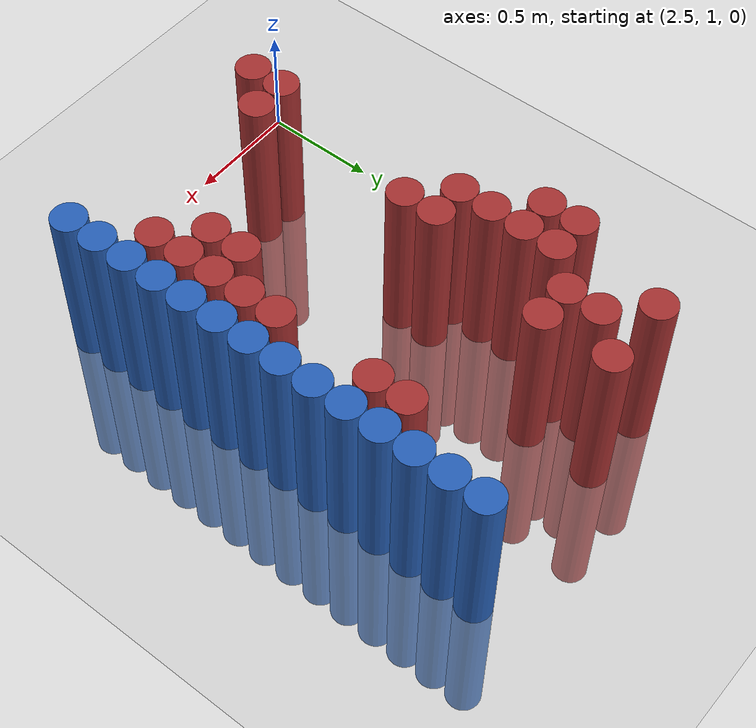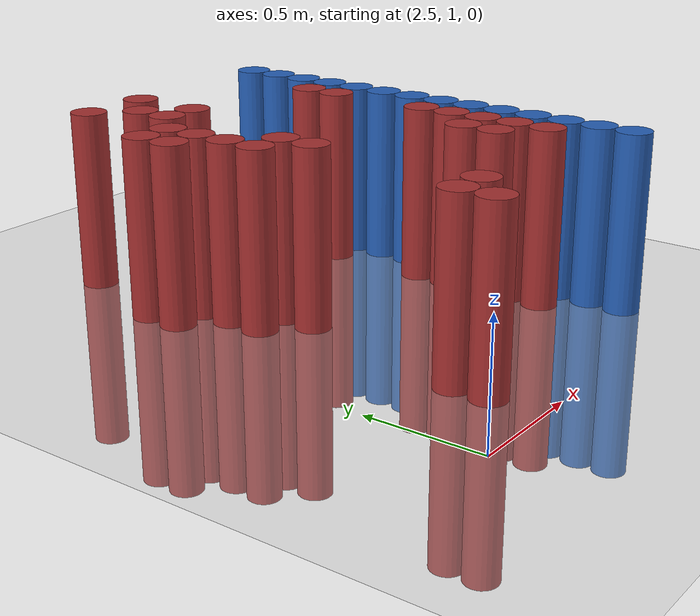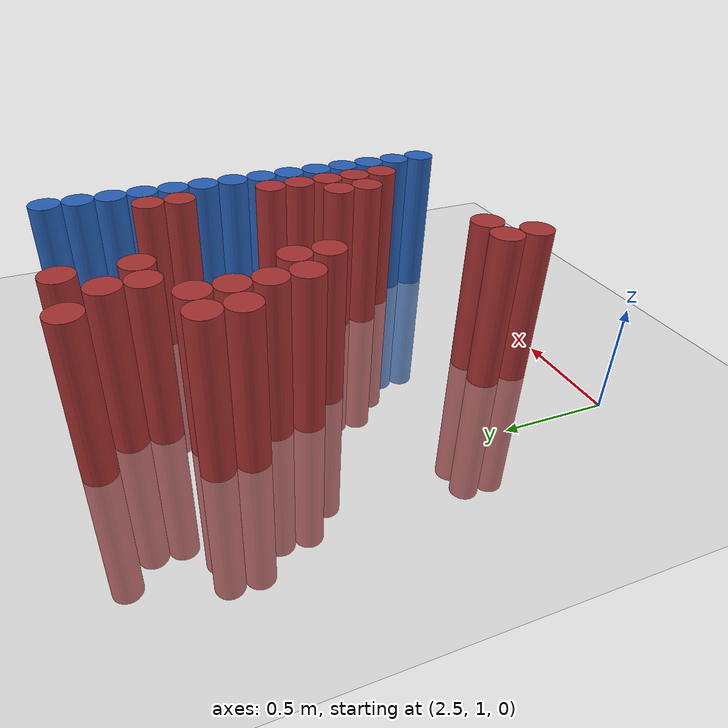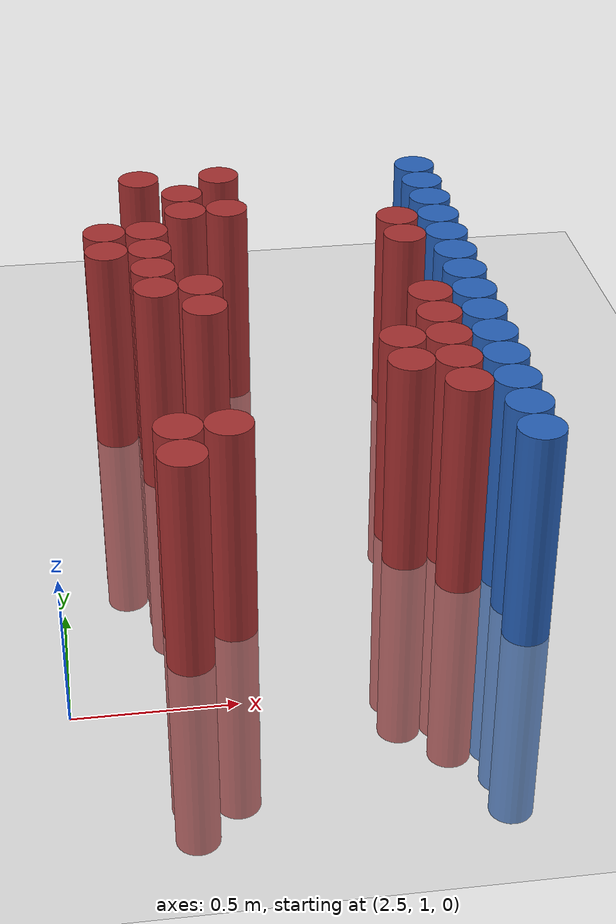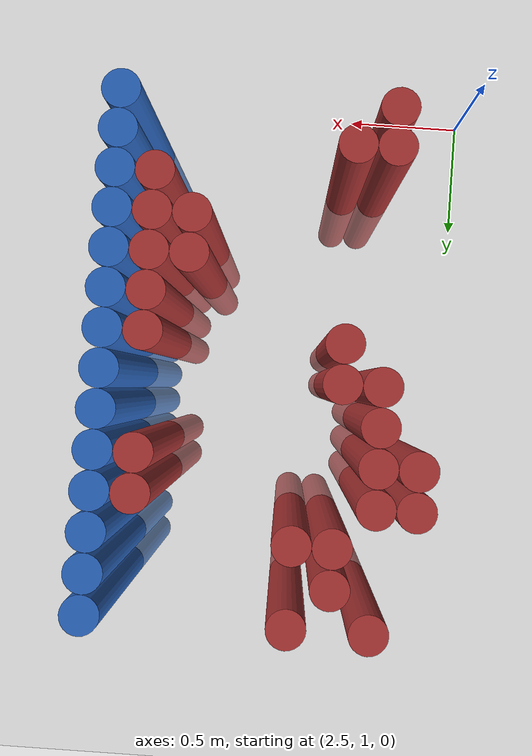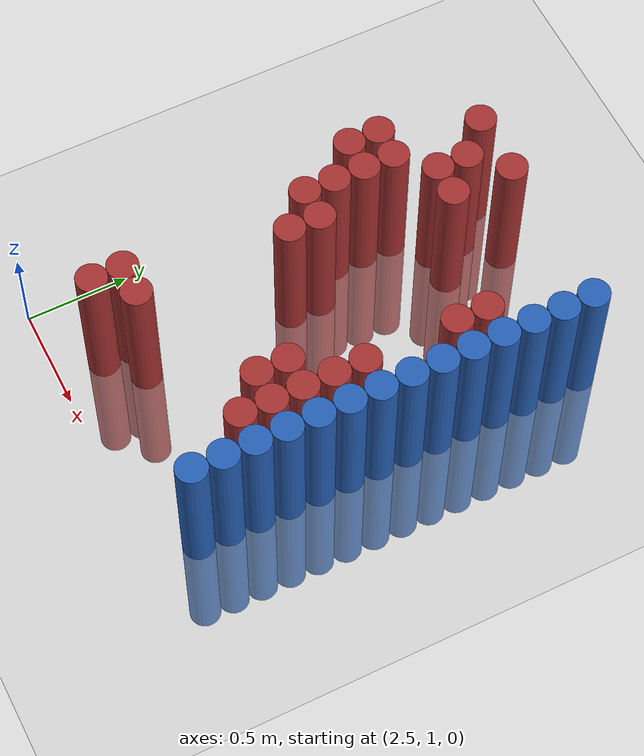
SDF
<sdf version="1.6">
 <world name="default">
  <model name="ground_plane">
   <static>1</static>
   <link name="link">
    <collision name="collision">
     <geometry><plane><normal>0 0 1</normal><size>100 100</size></plane></geometry>
     <surface><friction><ode><mu>100</mu><mu2>50</mu2></ode></friction></surface>
    </collision>
    <visual name="visual">
     <cast_shadows>0</cast_shadows>
     <geometry><plane><normal>0 0 1</normal><size>100 100</size></plane></geometry>
     <material>
      <script><uri>file://media/materials/scripts/gazebo.material</uri><name>Gazebo/Grey</name></script>
     </material>
    </visual>
   </link>
  </model>
  <model name="unit_cylinder_130">
   <static>1</static>
   <pose>3.925000 1.225000 0.000000 0.000000 0.000000 0.000000</pose>
   <link name="link">
    <inertial>
     <mass>1</mass>
     <inertia><ixx>0.145833</ixx><ixy>0</ixy><ixz>0</ixz><iyy>0.145833</iyy><iyz>0</iyz><izz>0.125</izz></inertia>
    </inertial>
    <collision name="collision">
     <geometry><cylinder><radius>0.075000</radius><length>1.5</length></cylinder></geometry>
    </collision>
    <visual name="visual">
     <geometry><cylinder><radius>0.075000</radius><length>1.5</length></cylinder></geometry>
     <material>
      <ambient>0.152000 0.379000 0.720000 1</ambient>
      <diffuse>0.152000 0.379000 0.720000 1</diffuse>
     </material>
     <material>
      <script><name>Gazebo/Grey</name><uri>file://media/materials/scripts/gazebo.material</uri></script>
     </material>
    </visual>
   </link>
  </model>
  <model name="unit_cylinder_132">
   <static>1</static>
   <pose>3.925000 1.375000 0.000000 0.000000 0.000000 0.000000</pose>
   <link name="link">
    <inertial>
     <mass>1</mass>
     <inertia><ixx>0.145833</ixx><ixy>0</ixy><ixz>0</ixz><iyy>0.145833</iyy><iyz>0</iyz><izz>0.125</izz></inertia>
    </inertial>
    <collision name="collision">
     <geometry><cylinder><radius>0.075000</radius><length>1.5</length></cylinder></geometry>
    </collision>
    <visual name="visual">
     <geometry><cylinder><radius>0.075000</radius><length>1.5</length></cylinder></geometry>
     <material>
      <ambient>0.152000 0.379000 0.720000 1</ambient>
      <diffuse>0.152000 0.379000 0.720000 1</diffuse>
     </material>
     <material>
      <script><name>Gazebo/Grey</name><uri>file://media/materials/scripts/gazebo.material</uri></script>
     </material>
    </visual>
   </link>
  </model>
  <model name="unit_cylinder_134">
   <static>1</static>
   <pose>3.925000 1.525000 0.000000 0.000000 0.000000 0.000000</pose>
   <link name="link">
    <inertial>
     <mass>1</mass>
     <inertia><ixx>0.145833</ixx><ixy>0</ixy><ixz>0</ixz><iyy>0.145833</iyy><iyz>0</iyz><izz>0.125</izz></inertia>
    </inertial>
    <collision name="collision">
     <geometry><cylinder><radius>0.075000</radius><length>1.5</length></cylinder></geometry>
    </collision>
    <visual name="visual">
     <geometry><cylinder><radius>0.075000</radius><length>1.5</length></cylinder></geometry>
     <material>
      <ambient>0.152000 0.379000 0.720000 1</ambient>
      <diffuse>0.152000 0.379000 0.720000 1</diffuse>
     </material>
     <material>
      <script><name>Gazebo/Grey</name><uri>file://media/materials/scripts/gazebo.material</uri></script>
     </material>
    </visual>
   </link>
  </model>
  <model name="unit_cylinder_136">
   <static>1</static>
   <pose>3.925000 1.675000 0.000000 0.000000 0.000000 0.000000</pose>
   <link name="link">
    <inertial>
     <mass>1</mass>
     <inertia><ixx>0.145833</ixx><ixy>0</ixy><ixz>0</ixz><iyy>0.145833</iyy><iyz>0</iyz><izz>0.125</izz></inertia>
    </inertial>
    <collision name="collision">
     <geometry><cylinder><radius>0.075000</radius><length>1.5</length></cylinder></geometry>
    </collision>
    <visual name="visual">
     <geometry><cylinder><radius>0.075000</radius><length>1.5</length></cylinder></geometry>
     <material>
      <ambient>0.152000 0.379000 0.720000 1</ambient>
      <diffuse>0.152000 0.379000 0.720000 1</diffuse>
     </material>
     <material>
      <script><name>Gazebo/Grey</name><uri>file://media/materials/scripts/gazebo.material</uri></script>
     </material>
    </visual>
   </link>
  </model>
  <model name="unit_cylinder_138">
   <static>1</static>
   <pose>3.925000 1.825000 0.000000 0.000000 0.000000 0.000000</pose>
   <link name="link">
    <inertial>
     <mass>1</mass>
     <inertia><ixx>0.145833</ixx><ixy>0</ixy><ixz>0</ixz><iyy>0.145833</iyy><iyz>0</iyz><izz>0.125</izz></inertia>
    </inertial>
    <collision name="collision">
     <geometry><cylinder><radius>0.075000</radius><length>1.5</length></cylinder></geometry>
    </collision>
    <visual name="visual">
     <geometry><cylinder><radius>0.075000</radius><length>1.5</length></cylinder></geometry>
     <material>
      <ambient>0.152000 0.379000 0.720000 1</ambient>
      <diffuse>0.152000 0.379000 0.720000 1</diffuse>
     </material>
     <material>
      <script><name>Gazebo/Grey</name><uri>file://media/materials/scripts/gazebo.material</uri></script>
     </material>
    </visual>
   </link>
  </model>
  <model name="unit_cylinder_140">
   <static>1</static>
   <pose>3.925000 1.975000 0.000000 0.000000 0.000000 0.000000</pose>
   <link name="link">
    <inertial>
     <mass>1</mass>
     <inertia><ixx>0.145833</ixx><ixy>0</ixy><ixz>0</ixz><iyy>0.145833</iyy><iyz>0</iyz><izz>0.125</izz></inertia>
    </inertial>
    <collision name="collision">
     <geometry><cylinder><radius>0.075000</radius><length>1.5</length></cylinder></geometry>
    </collision>
    <visual name="visual">
     <geometry><cylinder><radius>0.075000</radius><length>1.5</length></cylinder></geometry>
     <material>
      <ambient>0.152000 0.379000 0.720000 1</ambient>
      <diffuse>0.152000 0.379000 0.720000 1</diffuse>
     </material>
     <material>
      <script><name>Gazebo/Grey</name><uri>file://media/materials/scripts/gazebo.material</uri></script>
     </material>
    </visual>
   </link>
  </model>
  <model name="unit_cylinder_142">
   <static>1</static>
   <pose>3.925000 2.125000 0.000000 0.000000 0.000000 0.000000</pose>
   <link name="link">
    <inertial>
     <mass>1</mass>
     <inertia><ixx>0.145833</ixx><ixy>0</ixy><ixz>0</ixz><iyy>0.145833</iyy><iyz>0</iyz><izz>0.125</izz></inertia>
    </inertial>
    <collision name="collision">
     <geometry><cylinder><radius>0.075000</radius><length>1.5</length></cylinder></geometry>
    </collision>
    <visual name="visual">
     <geometry><cylinder><radius>0.075000</radius><length>1.5</length></cylinder></geometry>
     <material>
      <ambient>0.152000 0.379000 0.720000 1</ambient>
      <diffuse>0.152000 0.379000 0.720000 1</diffuse>
     </material>
     <material>
      <script><name>Gazebo/Grey</name><uri>file://media/materials/scripts/gazebo.material</uri></script>
     </material>
    </visual>
   </link>
  </model>
  <model name="unit_cylinder_144">
   <static>1</static>
   <pose>3.925000 2.275000 0.000000 0.000000 0.000000 0.000000</pose>
   <link name="link">
    <inertial>
     <mass>1</mass>
     <inertia><ixx>0.145833</ixx><ixy>0</ixy><ixz>0</ixz><iyy>0.145833</iyy><iyz>0</iyz><izz>0.125</izz></inertia>
    </inertial>
    <collision name="collision">
     <geometry><cylinder><radius>0.075000</radius><length>1.5</length></cylinder></geometry>
    </collision>
    <visual name="visual">
     <geometry><cylinder><radius>0.075000</radius><length>1.5</length></cylinder></geometry>
     <material>
      <ambient>0.152000 0.379000 0.720000 1</ambient>
      <diffuse>0.152000 0.379000 0.720000 1</diffuse>
     </material>
     <material>
      <script><name>Gazebo/Grey</name><uri>file://media/materials/scripts/gazebo.material</uri></script>
     </material>
    </visual>
   </link>
  </model>
  <model name="unit_cylinder_146">
   <static>1</static>
   <pose>3.925000 2.425000 0.000000 0.000000 0.000000 0.000000</pose>
   <link name="link">
    <inertial>
     <mass>1</mass>
     <inertia><ixx>0.145833</ixx><ixy>0</ixy><ixz>0</ixz><iyy>0.145833</iyy><iyz>0</iyz><izz>0.125</izz></inertia>
    </inertial>
    <collision name="collision">
     <geometry><cylinder><radius>0.075000</radius><length>1.5</length></cylinder></geometry>
    </collision>
    <visual name="visual">
     <geometry><cylinder><radius>0.075000</radius><length>1.5</length></cylinder></geometry>
     <material>
      <ambient>0.152000 0.379000 0.720000 1</ambient>
      <diffuse>0.152000 0.379000 0.720000 1</diffuse>
     </material>
     <material>
      <script><name>Gazebo/Grey</name><uri>file://media/materials/scripts/gazebo.material</uri></script>
     </material>
    </visual>
   </link>
  </model>
  <model name="unit_cylinder_148">
   <static>1</static>
   <pose>3.925000 2.575000 0.000000 0.000000 0.000000 0.000000</pose>
   <link name="link">
    <inertial>
     <mass>1</mass>
     <inertia><ixx>0.145833</ixx><ixy>0</ixy><ixz>0</ixz><iyy>0.145833</iyy><iyz>0</iyz><izz>0.125</izz></inertia>
    </inertial>
    <collision name="collision">
     <geometry><cylinder><radius>0.075000</radius><length>1.5</length></cylinder></geometry>
    </collision>
    <visual name="visual">
     <geometry><cylinder><radius>0.075000</radius><length>1.5</length></cylinder></geometry>
     <material>
      <ambient>0.152000 0.379000 0.720000 1</ambient>
      <diffuse>0.152000 0.379000 0.720000 1</diffuse>
     </material>
     <material>
      <script><name>Gazebo/Grey</name><uri>file://media/materials/scripts/gazebo.material</uri></script>
     </material>
    </visual>
   </link>
  </model>
  <model name="unit_cylinder_150">
   <static>1</static>
   <pose>3.925000 2.725000 0.000000 0.000000 0.000000 0.000000</pose>
   <link name="link">
    <inertial>
     <mass>1</mass>
     <inertia><ixx>0.145833</ixx><ixy>0</ixy><ixz>0</ixz><iyy>0.145833</iyy><iyz>0</iyz><izz>0.125</izz></inertia>
    </inertial>
    <collision name="collision">
     <geometry><cylinder><radius>0.075000</radius><length>1.5</length></cylinder></geometry>
    </collision>
    <visual name="visual">
     <geometry><cylinder><radius>0.075000</radius><length>1.5</length></cylinder></geometry>
     <material>
      <ambient>0.152000 0.379000 0.720000 1</ambient>
      <diffuse>0.152000 0.379000 0.720000 1</diffuse>
     </material>
     <material>
      <script><name>Gazebo/Grey</name><uri>file://media/materials/scripts/gazebo.material</uri></script>
     </material>
    </visual>
   </link>
  </model>
  <model name="unit_cylinder_152">
   <static>1</static>
   <pose>3.925000 2.875000 0.000000 0.000000 0.000000 0.000000</pose>
   <link name="link">
    <inertial>
     <mass>1</mass>
     <inertia><ixx>0.145833</ixx><ixy>0</ixy><ixz>0</ixz><iyy>0.145833</iyy><iyz>0</iyz><izz>0.125</izz></inertia>
    </inertial>
    <collision name="collision">
     <geometry><cylinder><radius>0.075000</radius><length>1.5</length></cylinder></geometry>
    </collision>
    <visual name="visual">
     <geometry><cylinder><radius>0.075000</radius><length>1.5</length></cylinder></geometry>
     <material>
      <ambient>0.152000 0.379000 0.720000 1</ambient>
      <diffuse>0.152000 0.379000 0.720000 1</diffuse>
     </material>
     <material>
      <script><name>Gazebo/Grey</name><uri>file://media/materials/scripts/gazebo.material</uri></script>
     </material>
    </visual>
   </link>
  </model>
  <model name="unit_cylinder_154">
   <static>1</static>
   <pose>3.925000 3.025000 0.000000 0.000000 0.000000 0.000000</pose>
   <link name="link">
    <inertial>
     <mass>1</mass>
     <inertia><ixx>0.145833</ixx><ixy>0</ixy><ixz>0</ixz><iyy>0.145833</iyy><iyz>0</iyz><izz>0.125</izz></inertia>
    </inertial>
    <collision name="collision">
     <geometry><cylinder><radius>0.075000</radius><length>1.5</length></cylinder></geometry>
    </collision>
    <visual name="visual">
     <geometry><cylinder><radius>0.075000</radius><length>1.5</length></cylinder></geometry>
     <material>
      <ambient>0.152000 0.379000 0.720000 1</ambient>
      <diffuse>0.152000 0.379000 0.720000 1</diffuse>
     </material>
     <material>
      <script><name>Gazebo/Grey</name><uri>file://media/materials/scripts/gazebo.material</uri></script>
     </material>
    </visual>
   </link>
  </model>
  <model name="unit_cylinder_156">
   <static>1</static>
   <pose>3.925000 3.175000 0.000000 0.000000 0.000000 0.000000</pose>
   <link name="link">
    <inertial>
     <mass>1</mass>
     <inertia><ixx>0.145833</ixx><ixy>0</ixy><ixz>0</ixz><iyy>0.145833</iyy><iyz>0</iyz><izz>0.125</izz></inertia>
    </inertial>
    <collision name="collision">
     <geometry><cylinder><radius>0.075000</radius><length>1.5</length></cylinder></geometry>
    </collision>
    <visual name="visual">
     <geometry><cylinder><radius>0.075000</radius><length>1.5</length></cylinder></geometry>
     <material>
      <ambient>0.152000 0.379000 0.720000 1</ambient>
      <diffuse>0.152000 0.379000 0.720000 1</diffuse>
     </material>
     <material>
      <script><name>Gazebo/Grey</name><uri>file://media/materials/scripts/gazebo.material</uri></script>
     </material>
    </visual>
   </link>
  </model>
  <model name="unit_cylinder_559">
   <static>1</static>
   <pose>2.725000 2.575000 0.000000 0.000000 0.000000 0.000000</pose>
   <link name="link">
    <inertial>
     <mass>1</mass>
     <inertia><ixx>0.145833</ixx><ixy>0</ixy><ixz>0</ixz><iyy>0.145833</iyy><iyz>0</iyz><izz>0.125</izz></inertia>
    </inertial>
    <collision name="collision">
     <geometry><cylinder><radius>0.075000</radius><length>1.5</length></cylinder></geometry>
    </collision>
    <visual name="visual">
     <geometry><cylinder><radius>0.075000</radius><length>1.5</length></cylinder></geometry>
     <material>
      <ambient>0.648000 0.192000 0.192000 1</ambient>
      <diffuse>0.648000 0.192000 0.192000 1</diffuse>
     </material>
     <material>
      <script><name>Gazebo/Grey</name><uri>file://media/materials/scripts/gazebo.material</uri></script>
     </material>
    </visual>
   </link>
  </model>
  <model name="unit_cylinder_560">
   <static>1</static>
   <pose>2.725000 2.725000 0.000000 0.000000 0.000000 0.000000</pose>
   <link name="link">
    <inertial>
     <mass>1</mass>
     <inertia><ixx>0.145833</ixx><ixy>0</ixy><ixz>0</ixz><iyy>0.145833</iyy><iyz>0</iyz><izz>0.125</izz></inertia>
    </inertial>
    <collision name="collision">
     <geometry><cylinder><radius>0.075000</radius><length>1.5</length></cylinder></geometry>
    </collision>
    <visual name="visual">
     <geometry><cylinder><radius>0.075000</radius><length>1.5</length></cylinder></geometry>
     <material>
      <ambient>0.648000 0.192000 0.192000 1</ambient>
      <diffuse>0.648000 0.192000 0.192000 1</diffuse>
     </material>
     <material>
      <script><name>Gazebo/Grey</name><uri>file://media/materials/scripts/gazebo.material</uri></script>
     </material>
    </visual>
   </link>
  </model>
  <model name="unit_cylinder_568">
   <static>1</static>
   <pose>2.875000 1.225000 0.000000 0.000000 0.000000 0.000000</pose>
   <link name="link">
    <inertial>
     <mass>1</mass>
     <inertia><ixx>0.145833</ixx><ixy>0</ixy><ixz>0</ixz><iyy>0.145833</iyy><iyz>0</iyz><izz>0.125</izz></inertia>
    </inertial>
    <collision name="collision">
     <geometry><cylinder><radius>0.075000</radius><length>1.5</length></cylinder></geometry>
    </collision>
    <visual name="visual">
     <geometry><cylinder><radius>0.075000</radius><length>1.5</length></cylinder></geometry>
     <material>
      <ambient>0.648000 0.192000 0.192000 1</ambient>
      <diffuse>0.648000 0.192000 0.192000 1</diffuse>
     </material>
     <material>
      <script><name>Gazebo/Grey</name><uri>file://media/materials/scripts/gazebo.material</uri></script>
     </material>
    </visual>
   </link>
  </model>
  <model name="unit_cylinder_569">
   <static>1</static>
   <pose>2.875000 1.375000 0.000000 0.000000 0.000000 0.000000</pose>
   <link name="link">
    <inertial>
     <mass>1</mass>
     <inertia><ixx>0.145833</ixx><ixy>0</ixy><ixz>0</ixz><iyy>0.145833</iyy><iyz>0</iyz><izz>0.125</izz></inertia>
    </inertial>
    <collision name="collision">
     <geometry><cylinder><radius>0.075000</radius><length>1.5</length></cylinder></geometry>
    </collision>
    <visual name="visual">
     <geometry><cylinder><radius>0.075000</radius><length>1.5</length></cylinder></geometry>
     <material>
      <ambient>0.648000 0.192000 0.192000 1</ambient>
      <diffuse>0.648000 0.192000 0.192000 1</diffuse>
     </material>
     <material>
      <script><name>Gazebo/Grey</name><uri>file://media/materials/scripts/gazebo.material</uri></script>
     </material>
    </visual>
   </link>
  </model>
  <model name="unit_cylinder_570">
   <static>1</static>
   <pose>2.875000 2.275000 0.000000 0.000000 0.000000 0.000000</pose>
   <link name="link">
    <inertial>
     <mass>1</mass>
     <inertia><ixx>0.145833</ixx><ixy>0</ixy><ixz>0</ixz><iyy>0.145833</iyy><iyz>0</iyz><izz>0.125</izz></inertia>
    </inertial>
    <collision name="collision">
     <geometry><cylinder><radius>0.075000</radius><length>1.5</length></cylinder></geometry>
    </collision>
    <visual name="visual">
     <geometry><cylinder><radius>0.075000</radius><length>1.5</length></cylinder></geometry>
     <material>
      <ambient>0.648000 0.192000 0.192000 1</ambient>
      <diffuse>0.648000 0.192000 0.192000 1</diffuse>
     </material>
     <material>
      <script><name>Gazebo/Grey</name><uri>file://media/materials/scripts/gazebo.material</uri></script>
     </material>
    </visual>
   </link>
  </model>
  <model name="unit_cylinder_571">
   <static>1</static>
   <pose>2.875000 2.425000 0.000000 0.000000 0.000000 0.000000</pose>
   <link name="link">
    <inertial>
     <mass>1</mass>
     <inertia><ixx>0.145833</ixx><ixy>0</ixy><ixz>0</ixz><iyy>0.145833</iyy><iyz>0</iyz><izz>0.125</izz></inertia>
    </inertial>
    <collision name="collision">
     <geometry><cylinder><radius>0.075000</radius><length>1.5</length></cylinder></geometry>
    </collision>
    <visual name="visual">
     <geometry><cylinder><radius>0.075000</radius><length>1.5</length></cylinder></geometry>
     <material>
      <ambient>0.648000 0.192000 0.192000 1</ambient>
      <diffuse>0.648000 0.192000 0.192000 1</diffuse>
     </material>
     <material>
      <script><name>Gazebo/Grey</name><uri>file://media/materials/scripts/gazebo.material</uri></script>
     </material>
    </visual>
   </link>
  </model>
  <model name="unit_cylinder_572">
   <static>1</static>
   <pose>2.875000 2.575000 0.000000 0.000000 0.000000 0.000000</pose>
   <link name="link">
    <inertial>
     <mass>1</mass>
     <inertia><ixx>0.145833</ixx><ixy>0</ixy><ixz>0</ixz><iyy>0.145833</iyy><iyz>0</iyz><izz>0.125</izz></inertia>
    </inertial>
    <collision name="collision">
     <geometry><cylinder><radius>0.075000</radius><length>1.5</length></cylinder></geometry>
    </collision>
    <visual name="visual">
     <geometry><cylinder><radius>0.075000</radius><length>1.5</length></cylinder></geometry>
     <material>
      <ambient>0.648000 0.192000 0.192000 1</ambient>
      <diffuse>0.648000 0.192000 0.192000 1</diffuse>
     </material>
     <material>
      <script><name>Gazebo/Grey</name><uri>file://media/materials/scripts/gazebo.material</uri></script>
     </material>
    </visual>
   </link>
  </model>
  <model name="unit_cylinder_573">
   <static>1</static>
   <pose>2.875000 2.725000 0.000000 0.000000 0.000000 0.000000</pose>
   <link name="link">
    <inertial>
     <mass>1</mass>
     <inertia><ixx>0.145833</ixx><ixy>0</ixy><ixz>0</ixz><iyy>0.145833</iyy><iyz>0</iyz><izz>0.125</izz></inertia>
    </inertial>
    <collision name="collision">
     <geometry><cylinder><radius>0.075000</radius><length>1.5</length></cylinder></geometry>
    </collision>
    <visual name="visual">
     <geometry><cylinder><radius>0.075000</radius><length>1.5</length></cylinder></geometry>
     <material>
      <ambient>0.648000 0.192000 0.192000 1</ambient>
      <diffuse>0.648000 0.192000 0.192000 1</diffuse>
     </material>
     <material>
      <script><name>Gazebo/Grey</name><uri>file://media/materials/scripts/gazebo.material</uri></script>
     </material>
    </visual>
   </link>
  </model>
  <model name="unit_cylinder_574">
   <static>1</static>
   <pose>2.875000 3.175000 0.000000 0.000000 0.000000 0.000000</pose>
   <link name="link">
    <inertial>
     <mass>1</mass>
     <inertia><ixx>0.145833</ixx><ixy>0</ixy><ixz>0</ixz><iyy>0.145833</iyy><iyz>0</iyz><izz>0.125</izz></inertia>
    </inertial>
    <collision name="collision">
     <geometry><cylinder><radius>0.075000</radius><length>1.5</length></cylinder></geometry>
    </collision>
    <visual name="visual">
     <geometry><cylinder><radius>0.075000</radius><length>1.5</length></cylinder></geometry>
     <material>
      <ambient>0.648000 0.192000 0.192000 1</ambient>
      <diffuse>0.648000 0.192000 0.192000 1</diffuse>
     </material>
     <material>
      <script><name>Gazebo/Grey</name><uri>file://media/materials/scripts/gazebo.material</uri></script>
     </material>
    </visual>
   </link>
  </model>
  <model name="unit_cylinder_579">
   <static>1</static>
   <pose>3.025000 1.375000 0.000000 0.000000 0.000000 0.000000</pose>
   <link name="link">
    <inertial>
     <mass>1</mass>
     <inertia><ixx>0.145833</ixx><ixy>0</ixy><ixz>0</ixz><iyy>0.145833</iyy><iyz>0</iyz><izz>0.125</izz></inertia>
    </inertial>
    <collision name="collision">
     <geometry><cylinder><radius>0.075000</radius><length>1.5</length></cylinder></geometry>
    </collision>
    <visual name="visual">
     <geometry><cylinder><radius>0.075000</radius><length>1.5</length></cylinder></geometry>
     <material>
      <ambient>0.648000 0.192000 0.192000 1</ambient>
      <diffuse>0.648000 0.192000 0.192000 1</diffuse>
     </material>
     <material>
      <script><name>Gazebo/Grey</name><uri>file://media/materials/scripts/gazebo.material</uri></script>
     </material>
    </visual>
   </link>
  </model>
  <model name="unit_cylinder_580">
   <static>1</static>
   <pose>3.025000 2.125000 0.000000 0.000000 0.000000 0.000000</pose>
   <link name="link">
    <inertial>
     <mass>1</mass>
     <inertia><ixx>0.145833</ixx><ixy>0</ixy><ixz>0</ixz><iyy>0.145833</iyy><iyz>0</iyz><izz>0.125</izz></inertia>
    </inertial>
    <collision name="collision">
     <geometry><cylinder><radius>0.075000</radius><length>1.5</length></cylinder></geometry>
    </collision>
    <visual name="visual">
     <geometry><cylinder><radius>0.075000</radius><length>1.5</length></cylinder></geometry>
     <material>
      <ambient>0.648000 0.192000 0.192000 1</ambient>
      <diffuse>0.648000 0.192000 0.192000 1</diffuse>
     </material>
     <material>
      <script><name>Gazebo/Grey</name><uri>file://media/materials/scripts/gazebo.material</uri></script>
     </material>
    </visual>
   </link>
  </model>
  <model name="unit_cylinder_581">
   <static>1</static>
   <pose>3.025000 2.275000 0.000000 0.000000 0.000000 0.000000</pose>
   <link name="link">
    <inertial>
     <mass>1</mass>
     <inertia><ixx>0.145833</ixx><ixy>0</ixy><ixz>0</ixz><iyy>0.145833</iyy><iyz>0</iyz><izz>0.125</izz></inertia>
    </inertial>
    <collision name="collision">
     <geometry><cylinder><radius>0.075000</radius><length>1.5</length></cylinder></geometry>
    </collision>
    <visual name="visual">
     <geometry><cylinder><radius>0.075000</radius><length>1.5</length></cylinder></geometry>
     <material>
      <ambient>0.648000 0.192000 0.192000 1</ambient>
      <diffuse>0.648000 0.192000 0.192000 1</diffuse>
     </material>
     <material>
      <script><name>Gazebo/Grey</name><uri>file://media/materials/scripts/gazebo.material</uri></script>
     </material>
    </visual>
   </link>
  </model>
  <model name="unit_cylinder_582">
   <static>1</static>
   <pose>3.025000 2.875000 0.000000 0.000000 0.000000 0.000000</pose>
   <link name="link">
    <inertial>
     <mass>1</mass>
     <inertia><ixx>0.145833</ixx><ixy>0</ixy><ixz>0</ixz><iyy>0.145833</iyy><iyz>0</iyz><izz>0.125</izz></inertia>
    </inertial>
    <collision name="collision">
     <geometry><cylinder><radius>0.075000</radius><length>1.5</length></cylinder></geometry>
    </collision>
    <visual name="visual">
     <geometry><cylinder><radius>0.075000</radius><length>1.5</length></cylinder></geometry>
     <material>
      <ambient>0.648000 0.192000 0.192000 1</ambient>
      <diffuse>0.648000 0.192000 0.192000 1</diffuse>
     </material>
     <material>
      <script><name>Gazebo/Grey</name><uri>file://media/materials/scripts/gazebo.material</uri></script>
     </material>
    </visual>
   </link>
  </model>
  <model name="unit_cylinder_583">
   <static>1</static>
   <pose>3.025000 3.025000 0.000000 0.000000 0.000000 0.000000</pose>
   <link name="link">
    <inertial>
     <mass>1</mass>
     <inertia><ixx>0.145833</ixx><ixy>0</ixy><ixz>0</ixz><iyy>0.145833</iyy><iyz>0</iyz><izz>0.125</izz></inertia>
    </inertial>
    <collision name="collision">
     <geometry><cylinder><radius>0.075000</radius><length>1.5</length></cylinder></geometry>
    </collision>
    <visual name="visual">
     <geometry><cylinder><radius>0.075000</radius><length>1.5</length></cylinder></geometry>
     <material>
      <ambient>0.648000 0.192000 0.192000 1</ambient>
      <diffuse>0.648000 0.192000 0.192000 1</diffuse>
     </material>
     <material>
      <script><name>Gazebo/Grey</name><uri>file://media/materials/scripts/gazebo.material</uri></script>
     </material>
    </visual>
   </link>
  </model>
  <model name="unit_cylinder_591">
   <static>1</static>
   <pose>3.175000 2.875000 0.000000 0.000000 0.000000 0.000000</pose>
   <link name="link">
    <inertial>
     <mass>1</mass>
     <inertia><ixx>0.145833</ixx><ixy>0</ixy><ixz>0</ixz><iyy>0.145833</iyy><iyz>0</iyz><izz>0.125</izz></inertia>
    </inertial>
    <collision name="collision">
     <geometry><cylinder><radius>0.075000</radius><length>1.5</length></cylinder></geometry>
    </collision>
    <visual name="visual">
     <geometry><cylinder><radius>0.075000</radius><length>1.5</length></cylinder></geometry>
     <material>
      <ambient>0.648000 0.192000 0.192000 1</ambient>
      <diffuse>0.648000 0.192000 0.192000 1</diffuse>
     </material>
     <material>
      <script><name>Gazebo/Grey</name><uri>file://media/materials/scripts/gazebo.material</uri></script>
     </material>
    </visual>
   </link>
  </model>
  <model name="unit_cylinder_592">
   <static>1</static>
   <pose>3.175000 3.175000 0.000000 0.000000 0.000000 0.000000</pose>
   <link name="link">
    <inertial>
     <mass>1</mass>
     <inertia><ixx>0.145833</ixx><ixy>0</ixy><ixz>0</ixz><iyy>0.145833</iyy><iyz>0</iyz><izz>0.125</izz></inertia>
    </inertial>
    <collision name="collision">
     <geometry><cylinder><radius>0.075000</radius><length>1.5</length></cylinder></geometry>
    </collision>
    <visual name="visual">
     <geometry><cylinder><radius>0.075000</radius><length>1.5</length></cylinder></geometry>
     <material>
      <ambient>0.648000 0.192000 0.192000 1</ambient>
      <diffuse>0.648000 0.192000 0.192000 1</diffuse>
     </material>
     <material>
      <script><name>Gazebo/Grey</name><uri>file://media/materials/scripts/gazebo.material</uri></script>
     </material>
    </visual>
   </link>
  </model>
  <model name="unit_cylinder_608">
   <static>1</static>
   <pose>3.625000 1.675000 0.000000 0.000000 0.000000 0.000000</pose>
   <link name="link">
    <inertial>
     <mass>1</mass>
     <inertia><ixx>0.145833</ixx><ixy>0</ixy><ixz>0</ixz><iyy>0.145833</iyy><iyz>0</iyz><izz>0.125</izz></inertia>
    </inertial>
    <collision name="collision">
     <geometry><cylinder><radius>0.075000</radius><length>1.5</length></cylinder></geometry>
    </collision>
    <visual name="visual">
     <geometry><cylinder><radius>0.075000</radius><length>1.5</length></cylinder></geometry>
     <material>
      <ambient>0.648000 0.192000 0.192000 1</ambient>
      <diffuse>0.648000 0.192000 0.192000 1</diffuse>
     </material>
     <material>
      <script><name>Gazebo/Grey</name><uri>file://media/materials/scripts/gazebo.material</uri></script>
     </material>
    </visual>
   </link>
  </model>
  <model name="unit_cylinder_609">
   <static>1</static>
   <pose>3.625000 1.825000 0.000000 0.000000 0.000000 0.000000</pose>
   <link name="link">
    <inertial>
     <mass>1</mass>
     <inertia><ixx>0.145833</ixx><ixy>0</ixy><ixz>0</ixz><iyy>0.145833</iyy><iyz>0</iyz><izz>0.125</izz></inertia>
    </inertial>
    <collision name="collision">
     <geometry><cylinder><radius>0.075000</radius><length>1.5</length></cylinder></geometry>
    </collision>
    <visual name="visual">
     <geometry><cylinder><radius>0.075000</radius><length>1.5</length></cylinder></geometry>
     <material>
      <ambient>0.648000 0.192000 0.192000 1</ambient>
      <diffuse>0.648000 0.192000 0.192000 1</diffuse>
     </material>
     <material>
      <script><name>Gazebo/Grey</name><uri>file://media/materials/scripts/gazebo.material</uri></script>
     </material>
    </visual>
   </link>
  </model>
  <model name="unit_cylinder_621">
   <static>1</static>
   <pose>3.775000 1.525000 0.000000 0.000000 0.000000 0.000000</pose>
   <link name="link">
    <inertial>
     <mass>1</mass>
     <inertia><ixx>0.145833</ixx><ixy>0</ixy><ixz>0</ixz><iyy>0.145833</iyy><iyz>0</iyz><izz>0.125</izz></inertia>
    </inertial>
    <collision name="collision">
     <geometry><cylinder><radius>0.075000</radius><length>1.5</length></cylinder></geometry>
    </collision>
    <visual name="visual">
     <geometry><cylinder><radius>0.075000</radius><length>1.5</length></cylinder></geometry>
     <material>
      <ambient>0.648000 0.192000 0.192000 1</ambient>
      <diffuse>0.648000 0.192000 0.192000 1</diffuse>
     </material>
     <material>
      <script><name>Gazebo/Grey</name><uri>file://media/materials/scripts/gazebo.material</uri></script>
     </material>
    </visual>
   </link>
  </model>
  <model name="unit_cylinder_622">
   <static>1</static>
   <pose>3.775000 1.675000 0.000000 0.000000 0.000000 0.000000</pose>
   <link name="link">
    <inertial>
     <mass>1</mass>
     <inertia><ixx>0.145833</ixx><ixy>0</ixy><ixz>0</ixz><iyy>0.145833</iyy><iyz>0</iyz><izz>0.125</izz></inertia>
    </inertial>
    <collision name="collision">
     <geometry><cylinder><radius>0.075000</radius><length>1.5</length></cylinder></geometry>
    </collision>
    <visual name="visual">
     <geometry><cylinder><radius>0.075000</radius><length>1.5</length></cylinder></geometry>
     <material>
      <ambient>0.648000 0.192000 0.192000 1</ambient>
      <diffuse>0.648000 0.192000 0.192000 1</diffuse>
     </material>
     <material>
      <script><name>Gazebo/Grey</name><uri>file://media/materials/scripts/gazebo.material</uri></script>
     </material>
    </visual>
   </link>
  </model>
  <model name="unit_cylinder_623">
   <static>1</static>
   <pose>3.775000 1.825000 0.000000 0.000000 0.000000 0.000000</pose>
   <link name="link">
    <inertial>
     <mass>1</mass>
     <inertia><ixx>0.145833</ixx><ixy>0</ixy><ixz>0</ixz><iyy>0.145833</iyy><iyz>0</iyz><izz>0.125</izz></inertia>
    </inertial>
    <collision name="collision">
     <geometry><cylinder><radius>0.075000</radius><length>1.5</length></cylinder></geometry>
    </collision>
    <visual name="visual">
     <geometry><cylinder><radius>0.075000</radius><length>1.5</length></cylinder></geometry>
     <material>
      <ambient>0.648000 0.192000 0.192000 1</ambient>
      <diffuse>0.648000 0.192000 0.192000 1</diffuse>
     </material>
     <material>
      <script><name>Gazebo/Grey</name><uri>file://media/materials/scripts/gazebo.material</uri></script>
     </material>
    </visual>
   </link>
  </model>
  <model name="unit_cylinder_624">
   <static>1</static>
   <pose>3.775000 1.975000 0.000000 0.000000 0.000000 0.000000</pose>
   <link name="link">
    <inertial>
     <mass>1</mass>
     <inertia><ixx>0.145833</ixx><ixy>0</ixy><ixz>0</ixz><iyy>0.145833</iyy><iyz>0</iyz><izz>0.125</izz></inertia>
    </inertial>
    <collision name="collision">
     <geometry><cylinder><radius>0.075000</radius><length>1.5</length></cylinder></geometry>
    </collision>
    <visual name="visual">
     <geometry><cylinder><radius>0.075000</radius><length>1.5</length></cylinder></geometry>
     <material>
      <ambient>0.648000 0.192000 0.192000 1</ambient>
      <diffuse>0.648000 0.192000 0.192000 1</diffuse>
     </material>
     <material>
      <script><name>Gazebo/Grey</name><uri>file://media/materials/scripts/gazebo.material</uri></script>
     </material>
    </visual>
   </link>
  </model>
  <model name="unit_cylinder_625">
   <static>1</static>
   <pose>3.775000 2.125000 0.000000 0.000000 0.000000 0.000000</pose>
   <link name="link">
    <inertial>
     <mass>1</mass>
     <inertia><ixx>0.145833</ixx><ixy>0</ixy><ixz>0</ixz><iyy>0.145833</iyy><iyz>0</iyz><izz>0.125</izz></inertia>
    </inertial>
    <collision name="collision">
     <geometry><cylinder><radius>0.075000</radius><length>1.5</length></cylinder></geometry>
    </collision>
    <visual name="visual">
     <geometry><cylinder><radius>0.075000</radius><length>1.5</length></cylinder></geometry>
     <material>
      <ambient>0.648000 0.192000 0.192000 1</ambient>
      <diffuse>0.648000 0.192000 0.192000 1</diffuse>
     </material>
     <material>
      <script><name>Gazebo/Grey</name><uri>file://media/materials/scripts/gazebo.material</uri></script>
     </material>
    </visual>
   </link>
  </model>
  <model name="unit_cylinder_626">
   <static>1</static>
   <pose>3.775000 2.575000 0.000000 0.000000 0.000000 0.000000</pose>
   <link name="link">
    <inertial>
     <mass>1</mass>
     <inertia><ixx>0.145833</ixx><ixy>0</ixy><ixz>0</ixz><iyy>0.145833</iyy><iyz>0</iyz><izz>0.125</izz></inertia>
    </inertial>
    <collision name="collision">
     <geometry><cylinder><radius>0.075000</radius><length>1.5</length></cylinder></geometry>
    </collision>
    <visual name="visual">
     <geometry><cylinder><radius>0.075000</radius><length>1.5</length></cylinder></geometry>
     <material>
      <ambient>0.648000 0.192000 0.192000 1</ambient>
      <diffuse>0.648000 0.192000 0.192000 1</diffuse>
     </material>
     <material>
      <script><name>Gazebo/Grey</name><uri>file://media/materials/scripts/gazebo.material</uri></script>
     </material>
    </visual>
   </link>
  </model>
  <model name="unit_cylinder_627">
   <static>1</static>
   <pose>3.775000 2.725000 0.000000 0.000000 0.000000 0.000000</pose>
   <link name="link">
    <inertial>
     <mass>1</mass>
     <inertia><ixx>0.145833</ixx><ixy>0</ixy><ixz>0</ixz><iyy>0.145833</iyy><iyz>0</iyz><izz>0.125</izz></inertia>
    </inertial>
    <collision name="collision">
     <geometry><cylinder><radius>0.075000</radius><length>1.5</length></cylinder></geometry>
    </collision>
    <visual name="visual">
     <geometry><cylinder><radius>0.075000</radius><length>1.5</length></cylinder></geometry>
     <material>
      <ambient>0.648000 0.192000 0.192000 1</ambient>
      <diffuse>0.648000 0.192000 0.192000 1</diffuse>
     </material>
     <material>
      <script><name>Gazebo/Grey</name><uri>file://media/materials/scripts/gazebo.material</uri></script>
     </material>
    </visual>
   </link>
  </model>
  <model name="unit_cylinder_661">
   <static>1</static>
   <pose>3.925000 1.225000 0.000000 0.000000 0.000000 0.000000</pose>
   <link name="link">
    <inertial>
     <mass>1</mass>
     <inertia><ixx>0.145833</ixx><ixy>0</ixy><ixz>0</ixz><iyy>0.145833</iyy><iyz>0</iyz><izz>0.125</izz></inertia>
    </inertial>
    <collision name="collision">
     <geometry><cylinder><radius>0.075000</radius><length>1.5</length></cylinder></geometry>
    </collision>
    <visual name="visual">
     <geometry><cylinder><radius>0.075000</radius><length>1.5</length></cylinder></geometry>
     <material>
      <ambient>0.152000 0.379000 0.720000 1</ambient>
      <diffuse>0.152000 0.379000 0.720000 1</diffuse>
     </material>
     <material>
      <script><name>Gazebo/Grey</name><uri>file://media/materials/scripts/gazebo.material</uri></script>
     </material>
    </visual>
   </link>
  </model>
  <model name="unit_cylinder_662">
   <static>1</static>
   <pose>3.925000 1.375000 0.000000 0.000000 0.000000 0.000000</pose>
   <link name="link">
    <inertial>
     <mass>1</mass>
     <inertia><ixx>0.145833</ixx><ixy>0</ixy><ixz>0</ixz><iyy>0.145833</iyy><iyz>0</iyz><izz>0.125</izz></inertia>
    </inertial>
    <collision name="collision">
     <geometry><cylinder><radius>0.075000</radius><length>1.5</length></cylinder></geometry>
    </collision>
    <visual name="visual">
     <geometry><cylinder><radius>0.075000</radius><length>1.5</length></cylinder></geometry>
     <material>
      <ambient>0.152000 0.379000 0.720000 1</ambient>
      <diffuse>0.152000 0.379000 0.720000 1</diffuse>
     </material>
     <material>
      <script><name>Gazebo/Grey</name><uri>file://media/materials/scripts/gazebo.material</uri></script>
     </material>
    </visual>
   </link>
  </model>
  <model name="unit_cylinder_663">
   <static>1</static>
   <pose>3.925000 1.525000 0.000000 0.000000 0.000000 0.000000</pose>
   <link name="link">
    <inertial>
     <mass>1</mass>
     <inertia><ixx>0.145833</ixx><ixy>0</ixy><ixz>0</ixz><iyy>0.145833</iyy><iyz>0</iyz><izz>0.125</izz></inertia>
    </inertial>
    <collision name="collision">
     <geometry><cylinder><radius>0.075000</radius><length>1.5</length></cylinder></geometry>
    </collision>
    <visual name="visual">
     <geometry><cylinder><radius>0.075000</radius><length>1.5</length></cylinder></geometry>
     <material>
      <ambient>0.152000 0.379000 0.720000 1</ambient>
      <diffuse>0.152000 0.379000 0.720000 1</diffuse>
     </material>
     <material>
      <script><name>Gazebo/Grey</name><uri>file://media/materials/scripts/gazebo.material</uri></script>
     </material>
    </visual>
   </link>
  </model>
  <model name="unit_cylinder_664">
   <static>1</static>
   <pose>3.925000 1.675000 0.000000 0.000000 0.000000 0.000000</pose>
   <link name="link">
    <inertial>
     <mass>1</mass>
     <inertia><ixx>0.145833</ixx><ixy>0</ixy><ixz>0</ixz><iyy>0.145833</iyy><iyz>0</iyz><izz>0.125</izz></inertia>
    </inertial>
    <collision name="collision">
     <geometry><cylinder><radius>0.075000</radius><length>1.5</length></cylinder></geometry>
    </collision>
    <visual name="visual">
     <geometry><cylinder><radius>0.075000</radius><length>1.5</length></cylinder></geometry>
     <material>
      <ambient>0.152000 0.379000 0.720000 1</ambient>
      <diffuse>0.152000 0.379000 0.720000 1</diffuse>
     </material>
     <material>
      <script><name>Gazebo/Grey</name><uri>file://media/materials/scripts/gazebo.material</uri></script>
     </material>
    </visual>
   </link>
  </model>
  <model name="unit_cylinder_665">
   <static>1</static>
   <pose>3.925000 1.825000 0.000000 0.000000 0.000000 0.000000</pose>
   <link name="link">
    <inertial>
     <mass>1</mass>
     <inertia><ixx>0.145833</ixx><ixy>0</ixy><ixz>0</ixz><iyy>0.145833</iyy><iyz>0</iyz><izz>0.125</izz></inertia>
    </inertial>
    <collision name="collision">
     <geometry><cylinder><radius>0.075000</radius><length>1.5</length></cylinder></geometry>
    </collision>
    <visual name="visual">
     <geometry><cylinder><radius>0.075000</radius><length>1.5</length></cylinder></geometry>
     <material>
      <ambient>0.152000 0.379000 0.720000 1</ambient>
      <diffuse>0.152000 0.379000 0.720000 1</diffuse>
     </material>
     <material>
      <script><name>Gazebo/Grey</name><uri>file://media/materials/scripts/gazebo.material</uri></script>
     </material>
    </visual>
   </link>
  </model>
  <model name="unit_cylinder_666">
   <static>1</static>
   <pose>3.925000 1.975000 0.000000 0.000000 0.000000 0.000000</pose>
   <link name="link">
    <inertial>
     <mass>1</mass>
     <inertia><ixx>0.145833</ixx><ixy>0</ixy><ixz>0</ixz><iyy>0.145833</iyy><iyz>0</iyz><izz>0.125</izz></inertia>
    </inertial>
    <collision name="collision">
     <geometry><cylinder><radius>0.075000</radius><length>1.5</length></cylinder></geometry>
    </collision>
    <visual name="visual">
     <geometry><cylinder><radius>0.075000</radius><length>1.5</length></cylinder></geometry>
     <material>
      <ambient>0.152000 0.379000 0.720000 1</ambient>
      <diffuse>0.152000 0.379000 0.720000 1</diffuse>
     </material>
     <material>
      <script><name>Gazebo/Grey</name><uri>file://media/materials/scripts/gazebo.material</uri></script>
     </material>
    </visual>
   </link>
  </model>
  <model name="unit_cylinder_667">
   <static>1</static>
   <pose>3.925000 2.125000 0.000000 0.000000 0.000000 0.000000</pose>
   <link name="link">
    <inertial>
     <mass>1</mass>
     <inertia><ixx>0.145833</ixx><ixy>0</ixy><ixz>0</ixz><iyy>0.145833</iyy><iyz>0</iyz><izz>0.125</izz></inertia>
    </inertial>
    <collision name="collision">
     <geometry><cylinder><radius>0.075000</radius><length>1.5</length></cylinder></geometry>
    </collision>
    <visual name="visual">
     <geometry><cylinder><radius>0.075000</radius><length>1.5</length></cylinder></geometry>
     <material>
      <ambient>0.152000 0.379000 0.720000 1</ambient>
      <diffuse>0.152000 0.379000 0.720000 1</diffuse>
     </material>
     <material>
      <script><name>Gazebo/Grey</name><uri>file://media/materials/scripts/gazebo.material</uri></script>
     </material>
    </visual>
   </link>
  </model>
  <model name="unit_cylinder_668">
   <static>1</static>
   <pose>3.925000 2.275000 0.000000 0.000000 0.000000 0.000000</pose>
   <link name="link">
    <inertial>
     <mass>1</mass>
     <inertia><ixx>0.145833</ixx><ixy>0</ixy><ixz>0</ixz><iyy>0.145833</iyy><iyz>0</iyz><izz>0.125</izz></inertia>
    </inertial>
    <collision name="collision">
     <geometry><cylinder><radius>0.075000</radius><length>1.5</length></cylinder></geometry>
    </collision>
    <visual name="visual">
     <geometry><cylinder><radius>0.075000</radius><length>1.5</length></cylinder></geometry>
     <material>
      <ambient>0.152000 0.379000 0.720000 1</ambient>
      <diffuse>0.152000 0.379000 0.720000 1</diffuse>
     </material>
     <material>
      <script><name>Gazebo/Grey</name><uri>file://media/materials/scripts/gazebo.material</uri></script>
     </material>
    </visual>
   </link>
  </model>
  <model name="unit_cylinder_669">
   <static>1</static>
   <pose>3.925000 2.425000 0.000000 0.000000 0.000000 0.000000</pose>
   <link name="link">
    <inertial>
     <mass>1</mass>
     <inertia><ixx>0.145833</ixx><ixy>0</ixy><ixz>0</ixz><iyy>0.145833</iyy><iyz>0</iyz><izz>0.125</izz></inertia>
    </inertial>
    <collision name="collision">
     <geometry><cylinder><radius>0.075000</radius><length>1.5</length></cylinder></geometry>
    </collision>
    <visual name="visual">
     <geometry><cylinder><radius>0.075000</radius><length>1.5</length></cylinder></geometry>
     <material>
      <ambient>0.152000 0.379000 0.720000 1</ambient>
      <diffuse>0.152000 0.379000 0.720000 1</diffuse>
     </material>
     <material>
      <script><name>Gazebo/Grey</name><uri>file://media/materials/scripts/gazebo.material</uri></script>
     </material>
    </visual>
   </link>
  </model>
  <model name="unit_cylinder_670">
   <static>1</static>
   <pose>3.925000 2.575000 0.000000 0.000000 0.000000 0.000000</pose>
   <link name="link">
    <inertial>
     <mass>1</mass>
     <inertia><ixx>0.145833</ixx><ixy>0</ixy><ixz>0</ixz><iyy>0.145833</iyy><iyz>0</iyz><izz>0.125</izz></inertia>
    </inertial>
    <collision name="collision">
     <geometry><cylinder><radius>0.075000</radius><length>1.5</length></cylinder></geometry>
    </collision>
    <visual name="visual">
     <geometry><cylinder><radius>0.075000</radius><length>1.5</length></cylinder></geometry>
     <material>
      <ambient>0.152000 0.379000 0.720000 1</ambient>
      <diffuse>0.152000 0.379000 0.720000 1</diffuse>
     </material>
     <material>
      <script><name>Gazebo/Grey</name><uri>file://media/materials/scripts/gazebo.material</uri></script>
     </material>
    </visual>
   </link>
  </model>
  <model name="unit_cylinder_671">
   <static>1</static>
   <pose>3.925000 2.725000 0.000000 0.000000 0.000000 0.000000</pose>
   <link name="link">
    <inertial>
     <mass>1</mass>
     <inertia><ixx>0.145833</ixx><ixy>0</ixy><ixz>0</ixz><iyy>0.145833</iyy><iyz>0</iyz><izz>0.125</izz></inertia>
    </inertial>
    <collision name="collision">
     <geometry><cylinder><radius>0.075000</radius><length>1.5</length></cylinder></geometry>
    </collision>
    <visual name="visual">
     <geometry><cylinder><radius>0.075000</radius><length>1.5</length></cylinder></geometry>
     <material>
      <ambient>0.152000 0.379000 0.720000 1</ambient>
      <diffuse>0.152000 0.379000 0.720000 1</diffuse>
     </material>
     <material>
      <script><name>Gazebo/Grey</name><uri>file://media/materials/scripts/gazebo.material</uri></script>
     </material>
    </visual>
   </link>
  </model>
  <model name="unit_cylinder_672">
   <static>1</static>
   <pose>3.925000 2.875000 0.000000 0.000000 0.000000 0.000000</pose>
   <link name="link">
    <inertial>
     <mass>1</mass>
     <inertia><ixx>0.145833</ixx><ixy>0</ixy><ixz>0</ixz><iyy>0.145833</iyy><iyz>0</iyz><izz>0.125</izz></inertia>
    </inertial>
    <collision name="collision">
     <geometry><cylinder><radius>0.075000</radius><length>1.5</length></cylinder></geometry>
    </collision>
    <visual name="visual">
     <geometry><cylinder><radius>0.075000</radius><length>1.5</length></cylinder></geometry>
     <material>
      <ambient>0.152000 0.379000 0.720000 1</ambient>
      <diffuse>0.152000 0.379000 0.720000 1</diffuse>
     </material>
     <material>
      <script><name>Gazebo/Grey</name><uri>file://media/materials/scripts/gazebo.material</uri></script>
     </material>
    </visual>
   </link>
  </model>
  <model name="unit_cylinder_673">
   <static>1</static>
   <pose>3.925000 3.025000 0.000000 0.000000 0.000000 0.000000</pose>
   <link name="link">
    <inertial>
     <mass>1</mass>
     <inertia><ixx>0.145833</ixx><ixy>0</ixy><ixz>0</ixz><iyy>0.145833</iyy><iyz>0</iyz><izz>0.125</izz></inertia>
    </inertial>
    <collision name="collision">
     <geometry><cylinder><radius>0.075000</radius><length>1.5</length></cylinder></geometry>
    </collision>
    <visual name="visual">
     <geometry><cylinder><radius>0.075000</radius><length>1.5</length></cylinder></geometry>
     <material>
      <ambient>0.152000 0.379000 0.720000 1</ambient>
      <diffuse>0.152000 0.379000 0.720000 1</diffuse>
     </material>
     <material>
      <script><name>Gazebo/Grey</name><uri>file://media/materials/scripts/gazebo.material</uri></script>
     </material>
    </visual>
   </link>
  </model>
  <model name="unit_cylinder_674">
   <static>1</static>
   <pose>3.925000 3.175000 0.000000 0.000000 0.000000 0.000000</pose>
   <link name="link">
    <inertial>
     <mass>1</mass>
     <inertia><ixx>0.145833</ixx><ixy>0</ixy><ixz>0</ixz><iyy>0.145833</iyy><iyz>0</iyz><izz>0.125</izz></inertia>
    </inertial>
    <collision name="collision">
     <geometry><cylinder><radius>0.075000</radius><length>1.5</length></cylinder></geometry>
    </collision>
    <visual name="visual">
     <geometry><cylinder><radius>0.075000</radius><length>1.5</length></cylinder></geometry>
     <material>
      <ambient>0.152000 0.379000 0.720000 1</ambient>
      <diffuse>0.152000 0.379000 0.720000 1</diffuse>
     </material>
     <material>
      <script><name>Gazebo/Grey</name><uri>file://media/materials/scripts/gazebo.material</uri></script>
     </material>
    </visual>
   </link>
  </model>
 </world>
</sdf>
